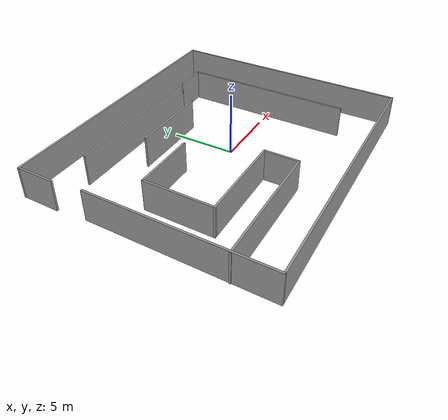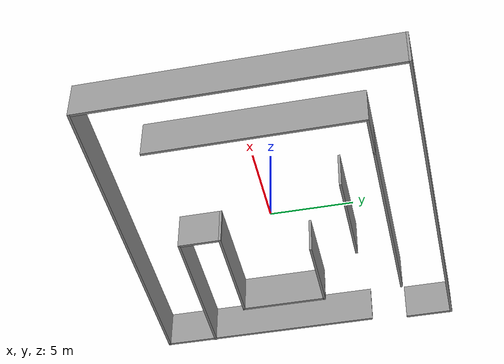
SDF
<?xml version='1.0'?>
<sdf version='1.7'>
  <model name='Untitled'>
    <pose>-0.744648 0.173664 0 0 -0 0</pose>
    <link name='Wall_26'>
      <collision name='Wall_26_Collision'>
        <geometry>
          <box>
            <size>14 0.15 2.5</size>
          </box>
        </geometry>
        <pose>0 0 1.25 0 -0 0</pose>
      </collision>
      <visual name='Wall_26_Visual'>
        <pose>0 0 1.25 0 -0 0</pose>
        <geometry>
          <box>
            <size>14 0.15 2.5</size>
          </box>
        </geometry>
        <material>
          <script>
            <uri>file://media/materials/scripts/gazebo.material</uri>
            <name>Gazebo/Grey</name>
          </script>
          <ambient>1 1 1 1</ambient>
        </material>
        <meta>
          <layer>0</layer>
        </meta>
      </visual>
      <pose>-10.55 -2.625 0 0 -0 -1.5708</pose>
    </link>
    <link name='Wall_27'>
      <collision name='Wall_27_Collision'>
        <geometry>
          <box>
            <size>21.5 0.15 2.5</size>
          </box>
        </geometry>
        <pose>0 0 1.25 0 -0 0</pose>
      </collision>
      <visual name='Wall_27_Visual'>
        <pose>0 0 1.25 0 -0 0</pose>
        <geometry>
          <box>
            <size>21.5 0.15 2.5</size>
          </box>
        </geometry>
        <material>
          <script>
            <uri>file://media/materials/scripts/gazebo.material</uri>
            <name>Gazebo/Grey</name>
          </script>
          <ambient>1 1 1 1</ambient>
        </material>
        <meta>
          <layer>0</layer>
        </meta>
      </visual>
      <pose>0.125 -9.55 0 0 -0 0</pose>
    </link>
    <link name='Wall_28'>
      <collision name='Wall_28_Collision'>
        <geometry>
          <box>
            <size>19.25 0.15 2.5</size>
          </box>
        </geometry>
        <pose>0 0 1.25 0 -0 0</pose>
      </collision>
      <visual name='Wall_28_Visual'>
        <pose>0 0 1.25 0 -0 0</pose>
        <geometry>
          <box>
            <size>19.25 0.15 2.5</size>
          </box>
        </geometry>
        <material>
          <script>
            <uri>file://media/materials/scripts/gazebo.material</uri>
            <name>Gazebo/Grey</name>
          </script>
          <ambient>1 1 1 1</ambient>
        </material>
        <meta>
          <layer>0</layer>
        </meta>
      </visual>
      <pose>10.8 0 0 0 -0 1.5708</pose>
    </link>
    <link name='Wall_29'>
      <collision name='Wall_29_Collision'>
        <geometry>
          <box>
            <size>21.75 0.15 2.5</size>
          </box>
        </geometry>
        <pose>0 0 1.25 0 -0 0</pose>
      </collision>
      <visual name='Wall_29_Visual'>
        <pose>0 0 1.25 0 -0 0</pose>
        <geometry>
          <box>
            <size>21.75 0.15 2.5</size>
          </box>
        </geometry>
        <material>
          <script>
            <uri>file://media/materials/scripts/gazebo.material</uri>
            <name>Gazebo/Grey</name>
          </script>
          <ambient>1 1 1 1</ambient>
        </material>
        <meta>
          <layer>0</layer>
        </meta>
      </visual>
      <pose>-0 9.55 0 0 -0 3.14159</pose>
    </link>
    <link name='Wall_30'>
      <collision name='Wall_30_Collision'>
        <geometry>
          <box>
            <size>3 0.15 2.5</size>
          </box>
        </geometry>
        <pose>0 0 1.25 0 -0 0</pose>
      </collision>
      <visual name='Wall_30_Visual'>
        <pose>0 0 1.25 0 -0 0</pose>
        <geometry>
          <box>
            <size>3 0.15 2.5</size>
          </box>
        </geometry>
        <material>
          <script>
            <uri>file://media/materials/scripts/gazebo.material</uri>
            <name>Gazebo/Grey</name>
          </script>
          <ambient>1 1 1 1</ambient>
        </material>
        <meta>
          <layer>0</layer>
        </meta>
      </visual>
      <pose>-10.8 8.125 0 0 -0 -1.5708</pose>
    </link>
    <link name='Wall_32'>
      <collision name='Wall_32_Collision'>
        <geometry>
          <box>
            <size>12.25 0.15 2.5</size>
          </box>
        </geometry>
        <pose>0 0 1.25 0 -0 0</pose>
      </collision>
      <visual name='Wall_32_Visual'>
        <pose>0 0 1.25 0 -0 0</pose>
        <geometry>
          <box>
            <size>12.25 0.15 2.5</size>
          </box>
        </geometry>
        <material>
          <script>
            <uri>file://media/materials/scripts/gazebo.material</uri>
            <name>Gazebo/Grey</name>
          </script>
          <ambient>1 1 1 1</ambient>
        </material>
        <meta>
          <layer>0</layer>
        </meta>
      </visual>
      <pose>-1.55025 6.6805 0 0 -0 0</pose>
    </link>
    <link name='Wall_33'>
      <collision name='Wall_33_Collision'>
        <geometry>
          <box>
            <size>2.75 0.15 2.5</size>
          </box>
        </geometry>
        <pose>0 0 1.25 0 -0 0</pose>
      </collision>
      <visual name='Wall_33_Visual'>
        <pose>0 0 1.25 0 -0 0</pose>
        <geometry>
          <box>
            <size>2.75 0.15 2.5</size>
          </box>
        </geometry>
        <material>
          <script>
            <uri>file://media/materials/scripts/gazebo.material</uri>
            <name>Gazebo/Grey</name>
          </script>
          <ambient>1 1 1 1</ambient>
        </material>
        <meta>
          <layer>0</layer>
        </meta>
      </visual>
      <pose>5.79975 6.6805 0 0 -0 0</pose>
    </link>
    <link name='Wall_34'>
      <collision name='Wall_34_Collision'>
        <geometry>
          <box>
            <size>13.25 0.15 2.5</size>
          </box>
        </geometry>
        <pose>0 0 1.25 0 -0 0</pose>
      </collision>
      <visual name='Wall_34_Visual'>
        <pose>0 0 1.25 0 -0 0</pose>
        <geometry>
          <box>
            <size>13.25 0.15 2.5</size>
          </box>
        </geometry>
        <material>
          <script>
            <uri>file://media/materials/scripts/gazebo.material</uri>
            <name>Gazebo/Grey</name>
          </script>
          <ambient>1 1 1 1</ambient>
        </material>
        <meta>
          <layer>0</layer>
        </meta>
      </visual>
      <pose>7.09975 0.1305 0 0 -0 -1.5708</pose>
    </link>
    <link name='Wall_36'>
      <collision name='Wall_36_Collision'>
        <geometry>
          <box>
            <size>9.75 0.15 2.5</size>
          </box>
        </geometry>
        <pose>0 0 1.25 0 -0 0</pose>
      </collision>
      <visual name='Wall_36_Visual'>
        <pose>0 0 1.25 0 -0 0</pose>
        <geometry>
          <box>
            <size>9.75 0.15 2.5</size>
          </box>
        </geometry>
        <material>
          <script>
            <uri>file://media/materials/scripts/gazebo.material</uri>
            <name>Gazebo/Grey</name>
          </script>
          <ambient>1 1 1 1</ambient>
        </material>
        <meta>
          <layer>0</layer>
        </meta>
      </visual>
      <pose>-5.80175 -6.3605 0 0 -0 0</pose>
    </link>
    <link name='Wall_37'>
      <collision name='Wall_37_Collision'>
        <geometry>
          <box>
            <size>2.75 0.15 2.5</size>
          </box>
        </geometry>
        <pose>0 0 1.25 0 -0 0</pose>
      </collision>
      <visual name='Wall_37_Visual'>
        <pose>0 0 1.25 0 -0 0</pose>
        <geometry>
          <box>
            <size>2.75 0.15 2.5</size>
          </box>
        </geometry>
        <material>
          <script>
            <uri>file://media/materials/scripts/gazebo.material</uri>
            <name>Gazebo/Grey</name>
          </script>
          <ambient>1 1 1 1</ambient>
        </material>
        <meta>
          <layer>0</layer>
        </meta>
      </visual>
      <pose>-1.00175 -5.0605 0 0 -0 1.5708</pose>
    </link>
    <link name='Wall_38'>
      <collision name='Wall_38_Collision'>
        <geometry>
          <box>
            <size>7 0.15 2.5</size>
          </box>
        </geometry>
        <pose>0 0 1.25 0 -0 0</pose>
      </collision>
      <visual name='Wall_38_Visual'>
        <pose>0 0 1.25 0 -0 0</pose>
        <geometry>
          <box>
            <size>7 0.15 2.5</size>
          </box>
        </geometry>
        <material>
          <script>
            <uri>file://media/materials/scripts/gazebo.material</uri>
            <name>Gazebo/Grey</name>
          </script>
          <ambient>1 1 1 1</ambient>
        </material>
        <meta>
          <layer>0</layer>
        </meta>
      </visual>
      <pose>-4.42675 -3.7605 0 0 -0 3.14159</pose>
    </link>
    <link name='Wall_39'>
      <collision name='Wall_39_Collision'>
        <geometry>
          <box>
            <size>5.5 0.15 2.5</size>
          </box>
        </geometry>
        <pose>0 0 1.25 0 -0 0</pose>
      </collision>
      <visual name='Wall_39_Visual'>
        <pose>0 0 1.25 0 -0 0</pose>
        <geometry>
          <box>
            <size>5.5 0.15 2.5</size>
          </box>
        </geometry>
        <material>
          <script>
            <uri>file://media/materials/scripts/gazebo.material</uri>
            <name>Gazebo/Grey</name>
          </script>
          <ambient>1 1 1 1</ambient>
        </material>
        <meta>
          <layer>0</layer>
        </meta>
      </visual>
      <pose>-7.85175 -1.0855 0 0 -0 1.5708</pose>
    </link>
    <link name='Wall_40'>
      <collision name='Wall_40_Collision'>
        <geometry>
          <box>
            <size>5 0.15 2.5</size>
          </box>
        </geometry>
        <pose>0 0 1.25 0 -0 0</pose>
      </collision>
      <visual name='Wall_40_Visual'>
        <pose>0 0 1.25 0 -0 0</pose>
        <geometry>
          <box>
            <size>5 0.15 2.5</size>
          </box>
        </geometry>
        <material>
          <script>
            <uri>file://media/materials/scripts/gazebo.material</uri>
            <name>Gazebo/Grey</name>
          </script>
          <ambient>1 1 1 1</ambient>
        </material>
        <meta>
          <layer>0</layer>
        </meta>
      </visual>
      <pose>-5.42675 1.5895 0 0 -0 0</pose>
    </link>
    <link name='Wall_42'>
      <collision name='Wall_42_Collision'>
        <geometry>
          <box>
            <size>6.25 0.15 2.5</size>
          </box>
        </geometry>
        <pose>0 0 1.25 0 -0 0</pose>
      </collision>
      <visual name='Wall_42_Visual'>
        <pose>0 0 1.25 0 -0 0</pose>
        <geometry>
          <box>
            <size>6.25 0.15 2.5</size>
          </box>
        </geometry>
        <material>
          <script>
            <uri>file://media/materials/scripts/gazebo.material</uri>
            <name>Gazebo/Grey</name>
          </script>
          <ambient>1 1 1 1</ambient>
        </material>
        <meta>
          <layer>0</layer>
        </meta>
      </visual>
      <pose>-0.72075 4.35175 0 0 -0 0</pose>
    </link>
    <static>1</static>
  </model>
</sdf>
